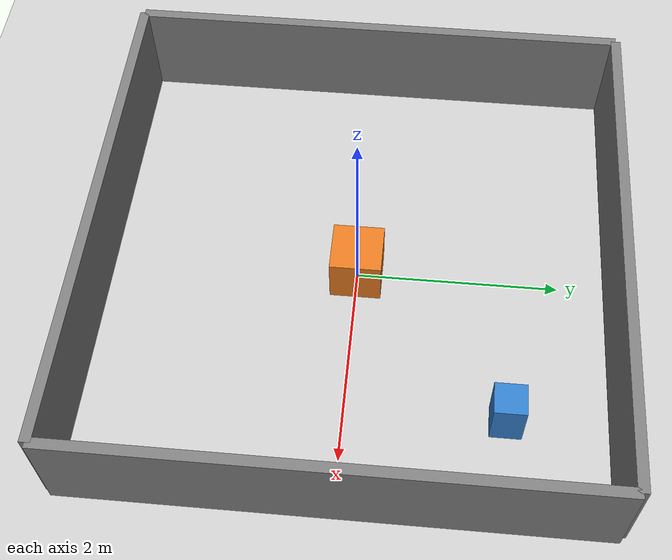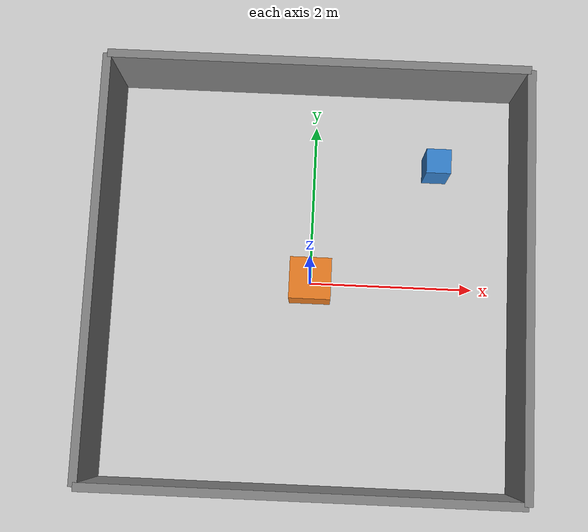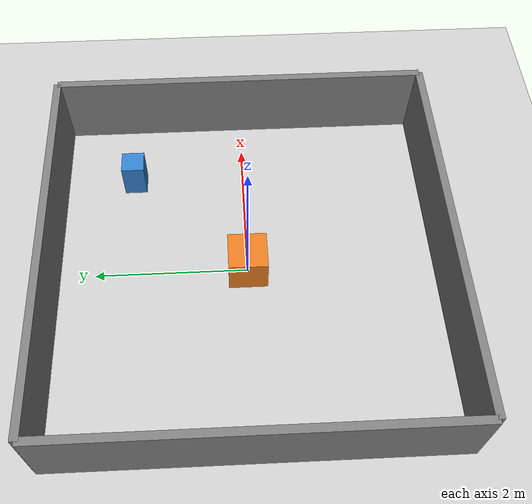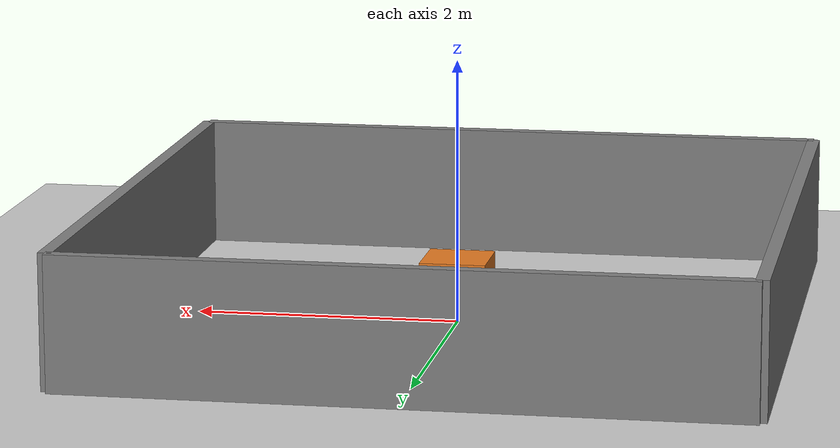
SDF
<?xml version="1.0" ?>
<sdf version="1.9">
  <world name="house_world">

    <!-- PHYSICS SIMULATION -->
    <physics name="default_physics" type="ode">
      <max_step_size>0.001</max_step_size>
      <real_time_factor>1.0</real_time_factor>
      <real_time_update_rate>1000</real_time_update_rate>

      <ode>
        <solver>
          <type>quick</type>
          <iters>50</iters>
          <sor>1.3</sor>
          <precon_iterations>0</precon_iterations>
        </solver>

        <constraints>
          <cfm>0</cfm>
          <erp>0.2</erp>
          <contact_max_correcting_vel>100.0</contact_max_correcting_vel>
          <contact_surface_layer>0.001</contact_surface_layer>
        </constraints>
      </ode>
    </physics>

    <!-- SCENE -->
    <scene>
      <ambient>0.4 0.4 0.4 1.0</ambient>
      <background>0.7 0.7 0.7 1.0</background>
      <shadows>true</shadows>
      <grid>false</grid>
    </scene>

    <!-- LIGHTING -->
    <light type="directional" name="sun">
      <cast_shadows>true</cast_shadows>
      <pose>0 0 10 0 0 0</pose>
      <diffuse>0.8 0.8 0.8 1</diffuse>
      <specular>0.2 0.2 0.2 1</specular>
      <attenuation>
        <range>1000</range>
        <linear>0.01</linear>
        <constant>0.1</constant>
        <quadratic>0.001</quadratic>
      </attenuation>
      <direction>-0.5 0.1 -0.9</direction>
    </light>

    <!-- GROUND PLANE -->
    <model name="ground_plane">
      <static>true</static>

      <link name="link">
        <collision name="collision">
          <geometry>
            <plane>
              <normal>0 0 1</normal>
              <size>10 10</size>
            </plane>
          </geometry>
          <friction>
            <ode>
              <mu>1.0</mu>
              <mu2>1.0</mu2>
            </ode>
          </friction>
        </collision>

        <visual name="visual">
          <geometry>
            <plane>
              <normal>0 0 1</normal>
              <size>10 10</size>
            </plane>
          </geometry>
          <material>
            <ambient>0.8 0.8 0.8 1</ambient>
            <diffuse>0.8 0.8 0.8 1</diffuse>
            <specular>0.8 0.8 0.8 1</specular>
          </material>
        </visual>
      </link>
    </model>

    <!-- WALLS -->
    <!-- Wall 1 (North) - Y = 2.5 -->
    <model name="wall_north">
      <static>true</static>
      <pose>0 2.5 0.5 0 0 0</pose>

      <link name="link">
        <collision name="collision">
          <geometry>
            <box>
              <!-- Size: length x width x height -->
              <size>5 0.1 1.0</size>
            </box>
          </geometry>
          <friction>
            <ode>
              <mu>1.0</mu>
              <mu2>1.0</mu2>
            </ode>
          </friction>
        </collision>

        <visual name="visual">
          <geometry>
            <box>
              <size>5 0.1 1.0</size>
            </box>
          </geometry>
          <material>
            <ambient>0.5 0.5 0.5 1</ambient>
            <diffuse>0.5 0.5 0.5 1</diffuse>
            <specular>0.5 0.5 0.5 1</specular>
          </material>
        </visual>
      </link>
    </model>

    <!-- Wall 2 (South) - Y = -2.5 -->
    <model name="wall_south">
      <static>true</static>
      <pose>0 -2.5 0.5 0 0 0</pose>

      <link name="link">
        <collision name="collision">
          <geometry>
            <box>
              <size>5 0.1 1.0</size>
            </box>
          </geometry>
          <friction>
            <ode>
              <mu>1.0</mu>
              <mu2>1.0</mu2>
            </ode>
          </friction>
        </collision>

        <visual name="visual">
          <geometry>
            <box>
              <size>5 0.1 1.0</size>
            </box>
          </geometry>
          <material>
            <ambient>0.5 0.5 0.5 1</ambient>
            <diffuse>0.5 0.5 0.5 1</diffuse>
            <specular>0.5 0.5 0.5 1</specular>
          </material>
        </visual>
      </link>
    </model>

    <!-- Wall 3 (East) - X = 2.5 -->
    <model name="wall_east">
      <static>true</static>
      <pose>2.5 0 0.5 0 0 0</pose>

      <link name="link">
        <collision name="collision">
          <geometry>
            <box>
              <size>0.1 5 1.0</size>
            </box>
          </geometry>
          <friction>
            <ode>
              <mu>1.0</mu>
              <mu2>1.0</mu2>
            </ode>
          </friction>
        </collision>

        <visual name="visual">
          <geometry>
            <box>
              <size>0.1 5 1.0</size>
            </box>
          </geometry>
          <material>
            <ambient>0.5 0.5 0.5 1</ambient>
            <diffuse>0.5 0.5 0.5 1</diffuse>
            <specular>0.5 0.5 0.5 1</specular>
          </material>
        </visual>
      </link>
    </model>

    <!-- Wall 4 (West) - X = -2.5 -->
    <model name="wall_west">
      <static>true</static>
      <pose>-2.5 0 0.5 0 0 0</pose>

      <link name="link">
        <collision name="collision">
          <geometry>
            <box>
              <size>0.1 5 1.0</size>
            </box>
          </geometry>
          <friction>
            <ode>
              <mu>1.0</mu>
              <mu2>1.0</mu2>
            </ode>
          </friction>
        </collision>

        <visual name="visual">
          <geometry>
            <box>
              <size>0.1 5 1.0</size>
            </box>
          </geometry>
          <material>
            <ambient>0.5 0.5 0.5 1</ambient>
            <diffuse>0.5 0.5 0.5 1</diffuse>
            <specular>0.5 0.5 0.5 1</specular>
          </material>
        </visual>
      </link>
    </model>

    <!-- OBSTACLES -->
    <!-- Obstacle 1: Box in center -->
    <model name="obstacle_box">
      <static>true</static>
      <pose>0 0 0.25 0 0 0</pose>

      <link name="link">
        <collision name="collision">
          <geometry>
            <box>
              <size>0.5 0.5 0.5</size>
            </box>
          </geometry>
        </collision>

        <visual name="visual">
          <geometry>
            <box>
              <size>0.5 0.5 0.5</size>
            </box>
          </geometry>
          <material>
            <ambient>0.9 0.48 0.13 1</ambient>
            <diffuse>0.9 0.48 0.13 1</diffuse>
            <specular>0.9 0.48 0.13 1</specular>
          </material>
        </visual>
      </link>
    </model>

    <!-- Obstacle 2: Box on side -->
    <model name="obstacle_box2">
      <static>true</static>
      <pose>1.5 1.5 0.25 0 0 0</pose>

      <link name="link">
        <collision name="collision">
          <geometry>
            <box>
              <size>0.3 0.3 0.5</size>
            </box>
          </geometry>
        </collision>

        <visual name="visual">
          <geometry>
            <box>
              <size>0.3 0.3 0.5</size>
            </box>
          </geometry>
          <material>
            <ambient>0.2 0.5 0.8 1</ambient>
            <diffuse>0.2 0.5 0.8 1</diffuse>
            <specular>0.2 0.5 0.8 1</specular>
          </material>
        </visual>
      </link>
    </model>

    <!-- GRAVITY AND FIELDS -->
    <gravity>0 0 -9.81</gravity>
    <magnetic_field>0.000000 0.000000 0.000000</magnetic_field>

  </world>
</sdf>
